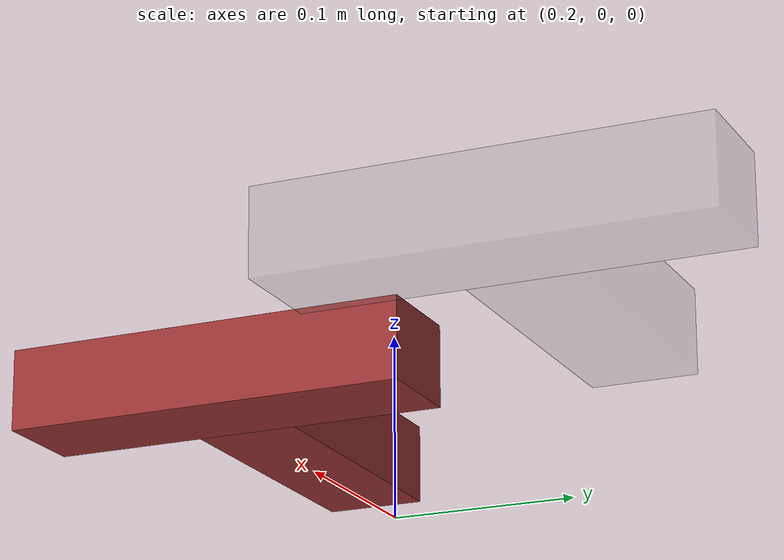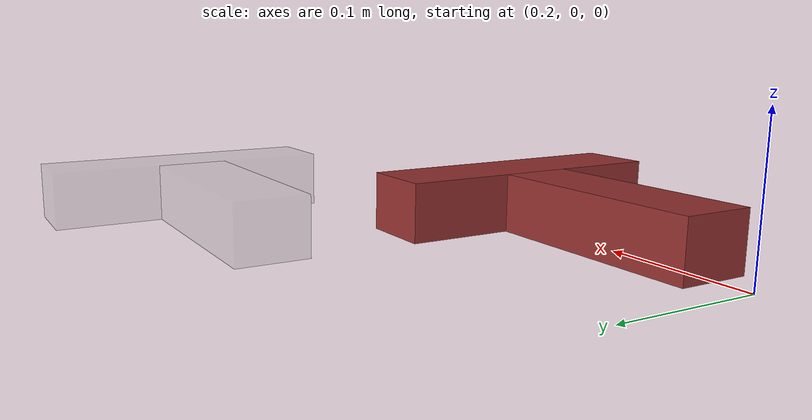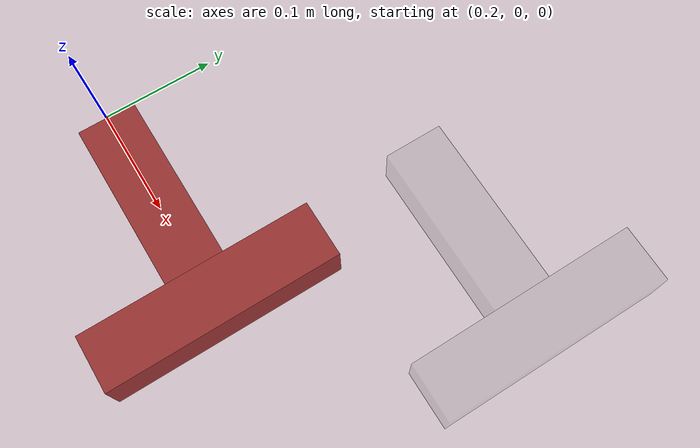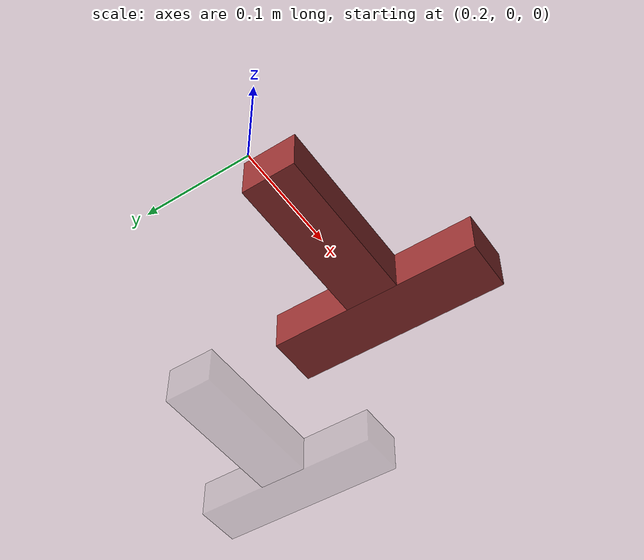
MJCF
<mujoco model="t_block">
  <default>
    <default class="t_block">
      <geom type="box" condim="1" rgba=".6 .2 .2 1" density="1240" solref="0.004 1"/>
      <default class="box1">
        <geom size="0.075 0.025 0.02"/>
      </default>
      <default class="box2">
        <geom size="0.1 0.025 0.02"/>
      </default>
      <site type="sphere" size=".005" rgba="0 1 0 1" group="5"/>
    </default>
  </default>

  <worldbody>
    <body name="t_block" pos="0.3 0 .02">
      <freejoint name="t_block_joint"/>
      <geom name="t_block_box_1" class="box1"/>
      <geom name="t_block_box_2" class="box2" pos="0.1 0 0" quat="1 0 0 1"/>
      <site class="t_block" pos="-0.075 0.025 -0.02"/>
      <site class="t_block" pos="-0.075 -0.025 -0.02"/>
      <site class="t_block" pos="0.075 -0.025 -0.02"/>
      <site class="t_block" pos="0.075 -0.1 -0.02"/>
      <site class="t_block" pos="0.125 -0.1 -0.02"/>
      <site class="t_block" pos="0.125 0.1 -0.02"/>
      <site class="t_block" pos="0.075 0.1 -0.02"/>
      <site class="t_block" pos="0.075 0.025 -0.02"/>
    </body>
    <body name="t_block_target" pos="0.45 0.2 .02" mocap="true">
      <geom name="t_block_target_box_1" class="box1" rgba=".5 .5 .5 .2" contype="0" conaffinity="0"/>
      <geom name="t_block_target_box_2" class="box2" pos="0.1 0 0" quat="1 0 0 1" rgba=".5 .5 .5 .2" contype="0" conaffinity="0"/>
      <site class="t_block" pos="-0.075 0.025 -0.02"/>
      <site class="t_block" pos="-0.075 -0.025 -0.02"/>
      <site class="t_block" pos="0.075 -0.025 -0.02"/>
      <site class="t_block" pos="0.075 -0.1 -0.02"/>
      <site class="t_block" pos="0.125 -0.1 -0.02"/>
      <site class="t_block" pos="0.125 0.1 -0.02"/>
      <site class="t_block" pos="0.075 0.1 -0.02"/>
      <site class="t_block" pos="0.075 0.025 -0.02"/>
    </body>
  </worldbody>
</mujoco>
